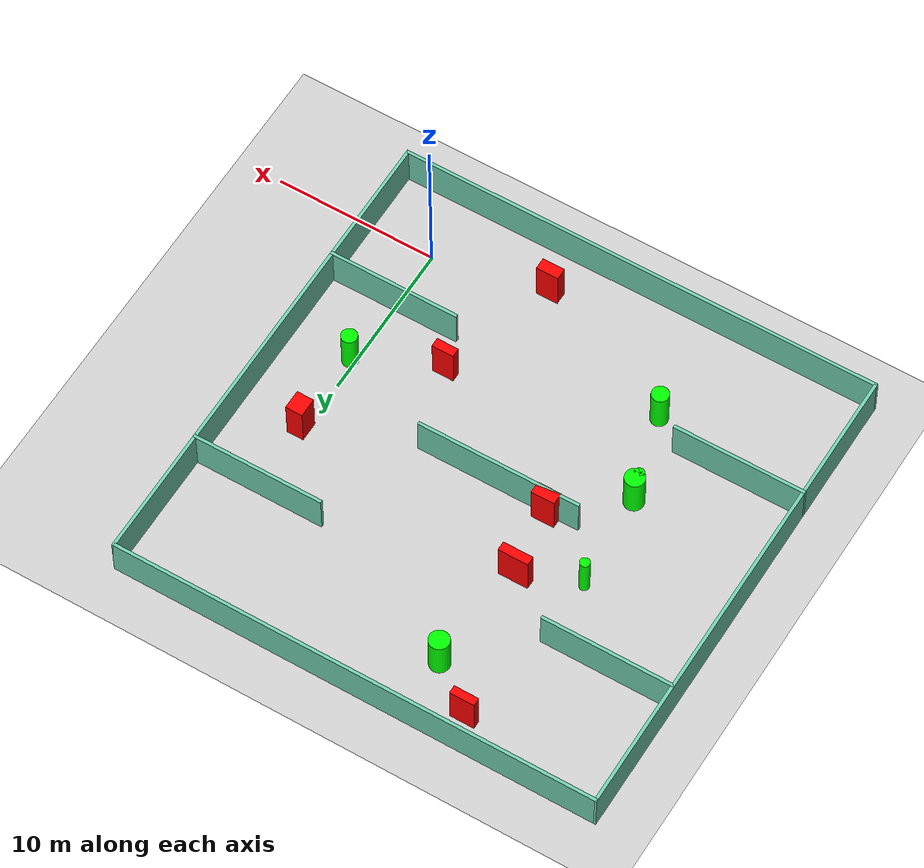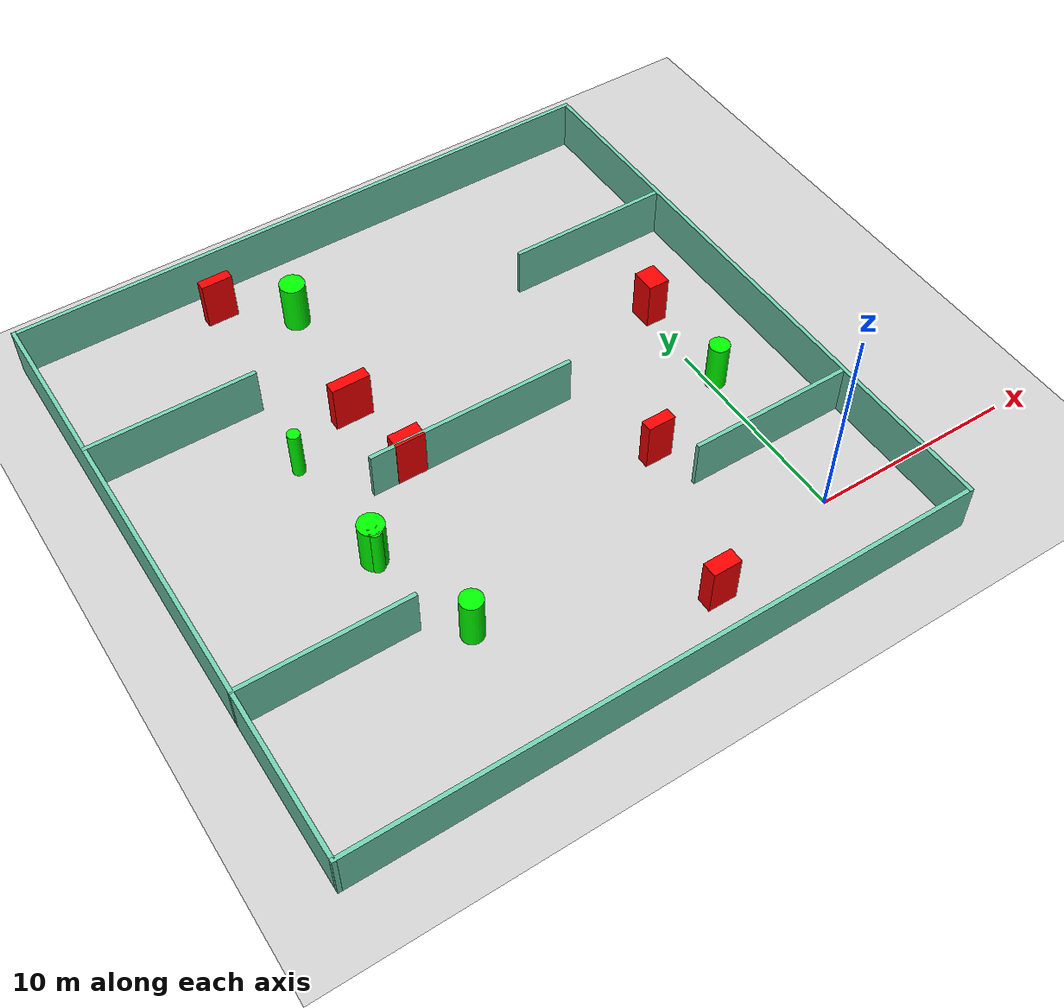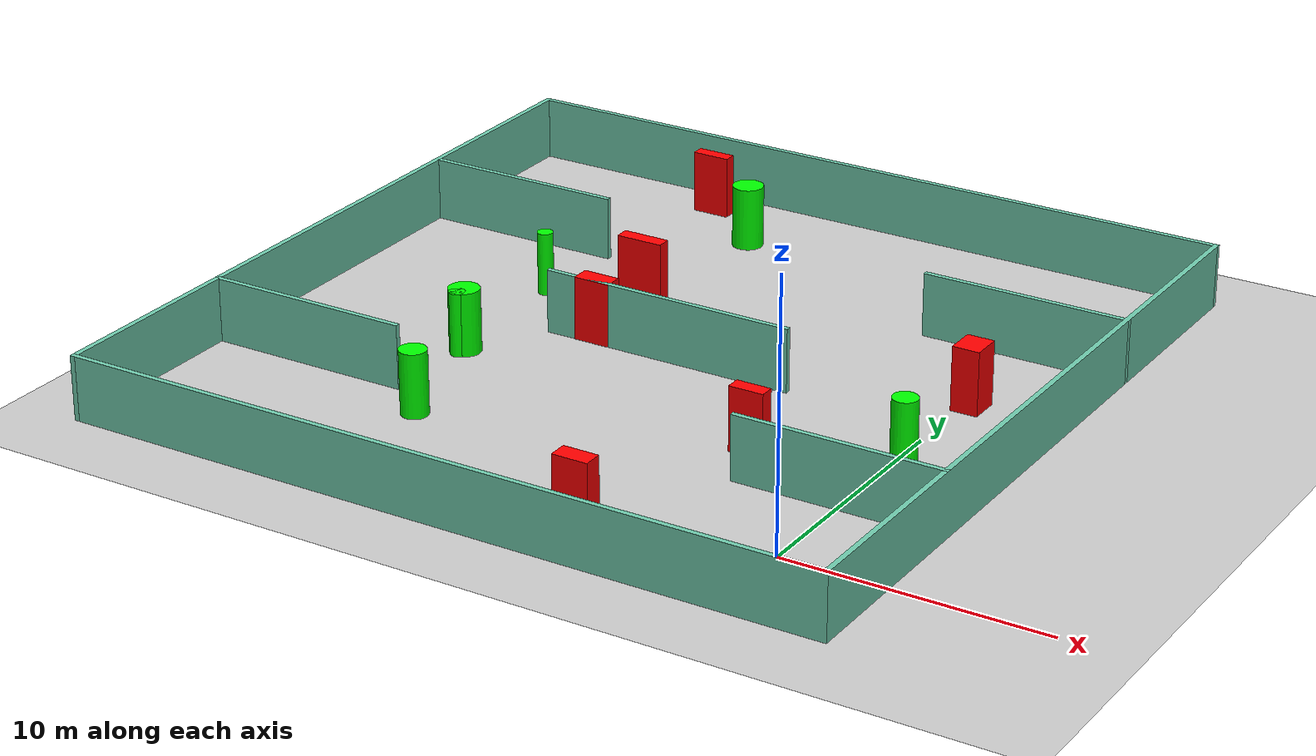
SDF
<sdf version="1.7">
 <world name="default">
  <light name="sun" type="directional">
   <pose>0 0 10 0 -0 0</pose>
   <diffuse>0.8 0.8 0.8 1</diffuse>
   <specular>0.2 0.2 0.2 1</specular>
   <attenuation>
    <range>1000</range>
    <constant>0.9</constant>
    <linear>0.01</linear>
    <quadratic>0.001</quadratic>
   </attenuation>
   <direction>-0.5 0.1 -0.9</direction>
   <spot><inner_angle>0</inner_angle><outer_angle>0</outer_angle><falloff>0</falloff></spot>
  </light>
  <model name="ground_plane">
   <static>1</static>
   <link name="link">
    <collision name="collision">
     <geometry><plane><normal>0 0 1</normal><size>100 100</size></plane></geometry>
     <surface>
      <contact><collide_bitmask>65535</collide_bitmask></contact>
      <friction><ode><mu>100</mu><mu2>50</mu2></ode></friction>
     </surface>
    </collision>
    <visual name="visual">
     <cast_shadows>0</cast_shadows>
     <geometry><plane><normal>0 0 1</normal><size>100 100</size></plane></geometry>
     <material>
      <script><uri>file://media/materials/scripts/gazebo.material</uri><name>Gazebo/Grey</name></script>
     </material>
    </visual>
   </link>
  </model>
  <gravity>0 0 -9.8</gravity>
  <magnetic_field>6e-06 2.3e-05 -4.2e-05</magnetic_field>
  <atmosphere type="adiabatic"/>
  <physics type="ode">
   <max_step_size>0.001</max_step_size>
   <real_time_factor>1</real_time_factor>
   <real_time_update_rate>1000</real_time_update_rate>
  </physics>
  <scene><ambient>0.4 0.4 0.4 1</ambient><background>0.7 0.7 0.7 1</background><shadows>1</shadows></scene>
  <spherical_coordinates>
   <surface_model>EARTH_WGS84</surface_model>
   <latitude_deg>0</latitude_deg>
   <longitude_deg>0</longitude_deg>
   <elevation>0</elevation>
   <heading_deg>0</heading_deg>
  </spherical_coordinates>
  <model name="my_base_walls">
   <link name="Wall_10">
    <collision name="Wall_10_Collision">
     <geometry><box><size>8.2 0.2 2.5</size></box></geometry>
     <pose>0 0 1.25 0 -0 0</pose>
    </collision>
    <visual name="Wall_10_Visual">
     <pose>0 0 1.25 0 -0 0</pose>
     <geometry><box><size>8.2 0.2 2.5</size></box></geometry>
     <material>
      <script><uri>file://media/materials/scripts/gazebo.material</uri><name>Gazebo/Grey</name></script>
      <ambient>0.435294 0.796078 0.67451 1</ambient>
     </material>
     <meta><layer>0</layer></meta>
    </visual>
    <pose>-11 -7 0 0 -0 0</pose>
   </link>
   <link name="Wall_12">
    <collision name="Wall_12_Collision">
     <geometry><box><size>8.2 0.2 2.5</size></box></geometry>
     <pose>0 0 1.25 0 -0 0</pose>
    </collision>
    <visual name="Wall_12_Visual">
     <pose>0 0 1.25 0 -0 0</pose>
     <geometry><box><size>8.2 0.2 2.5</size></box></geometry>
     <material>
      <script><uri>file://media/materials/scripts/gazebo.material</uri><name>Gazebo/Grey</name></script>
      <ambient>0.435294 0.796078 0.67451 1</ambient>
     </material>
     <meta><layer>0</layer></meta>
    </visual>
    <pose>-11 7 0 0 -0 0</pose>
   </link>
   <link name="Wall_14">
    <collision name="Wall_14_Collision">
     <geometry><box><size>8.2 0.2 2.5</size></box></geometry>
     <pose>0 0 1.25 0 -0 0</pose>
    </collision>
    <visual name="Wall_14_Visual">
     <pose>0 0 1.25 0 -0 0</pose>
     <geometry><box><size>8.2 0.2 2.5</size></box></geometry>
     <material>
      <script><uri>file://media/materials/scripts/gazebo.material</uri><name>Gazebo/Grey</name></script>
      <ambient>0.435294 0.796078 0.67451 1</ambient>
     </material>
     <meta><layer>0</layer></meta>
    </visual>
    <pose>11 7 0 0 -0 3.14159</pose>
   </link>
   <link name="Wall_16">
    <collision name="Wall_16_Collision">
     <geometry><box><size>10.2 0.2 2.5</size></box></geometry>
     <pose>0 0 1.25 0 -0 0</pose>
    </collision>
    <visual name="Wall_16_Visual">
     <pose>0 0 1.25 0 -0 0</pose>
     <geometry><box><size>10.2 0.2 2.5</size></box></geometry>
     <material>
      <script><uri>file://media/materials/scripts/gazebo.material</uri><name>Gazebo/Grey</name></script>
      <ambient>0.435294 0.796078 0.67451 1</ambient>
     </material>
     <meta><layer>0</layer></meta>
    </visual>
    <pose>0 0 0 0 -0 3.14159</pose>
   </link>
   <link name="Wall_2">
    <collision name="Wall_2_Collision">
     <geometry><box><size>30.2 0.2 2.5</size></box></geometry>
     <pose>0 0 1.25 0 -0 0</pose>
    </collision>
    <visual name="Wall_2_Visual">
     <pose>0 0 1.25 0 -0 0</pose>
     <geometry><box><size>30.2 0.2 2.5</size></box></geometry>
     <material>
      <script><uri>file://media/materials/scripts/gazebo.material</uri><name>Gazebo/Grey</name></script>
      <ambient>0.435294 0.796078 0.67451 1</ambient>
     </material>
     <meta><layer>0</layer></meta>
    </visual>
    <pose>0 -15 0 0 -0 3.14159</pose>
   </link>
   <link name="Wall_3">
    <collision name="Wall_3_Collision">
     <geometry><box><size>30.2 0.2 2.5</size></box></geometry>
     <pose>0 0 1.25 0 -0 0</pose>
    </collision>
    <visual name="Wall_3_Visual">
     <pose>0 0 1.25 0 -0 0</pose>
     <geometry><box><size>30.2 0.2 2.5</size></box></geometry>
     <material>
      <script><uri>file://media/materials/scripts/gazebo.material</uri><name>Gazebo/Grey</name></script>
      <ambient>0.435294 0.796078 0.67451 1</ambient>
     </material>
     <meta><layer>0</layer></meta>
    </visual>
    <pose>-15 0 0 0 -0 1.5708</pose>
   </link>
   <link name="Wall_4">
    <collision name="Wall_4_Collision">
     <geometry><box><size>30.2 0.2 2.5</size></box></geometry>
     <pose>0 0 1.25 0 -0 0</pose>
    </collision>
    <visual name="Wall_4_Visual">
     <pose>0 0 1.25 0 -0 0</pose>
     <geometry><box><size>30.2 0.2 2.5</size></box></geometry>
     <material>
      <script><uri>file://media/materials/scripts/gazebo.material</uri><name>Gazebo/Grey</name></script>
      <ambient>0.435294 0.796078 0.67451 1</ambient>
     </material>
     <meta><layer>0</layer></meta>
    </visual>
    <pose>0 15 0 0 -0 0</pose>
   </link>
   <link name="Wall_6">
    <collision name="Wall_6_Collision">
     <geometry><box><size>30.2 0.2 2.5</size></box></geometry>
     <pose>0 0 1.25 0 -0 0</pose>
    </collision>
    <visual name="Wall_6_Visual">
     <pose>0 0 1.25 0 -0 0</pose>
     <geometry><box><size>30.2 0.2 2.5</size></box></geometry>
     <material>
      <script><uri>file://media/materials/scripts/gazebo.material</uri><name>Gazebo/Grey</name></script>
      <ambient>0.435294 0.796078 0.67451 1</ambient>
     </material>
     <meta><layer>0</layer></meta>
    </visual>
    <pose>15 0 0 0 -0 1.5708</pose>
   </link>
   <link name="Wall_8">
    <collision name="Wall_8_Collision">
     <geometry><box><size>8.2 0.2 2.5</size></box></geometry>
     <pose>0 0 1.25 0 -0 0</pose>
    </collision>
    <visual name="Wall_8_Visual">
     <pose>0 0 1.25 0 -0 0</pose>
     <geometry><box><size>8.2 0.2 2.5</size></box></geometry>
     <material>
      <script><uri>file://media/materials/scripts/gazebo.material</uri><name>Gazebo/Grey</name></script>
      <ambient>0.435294 0.796078 0.67451 1</ambient>
     </material>
     <meta><layer>0</layer></meta>
    </visual>
    <pose>11 -7 0 0 -0 3.14159</pose>
   </link>
   <static>1</static>
   <pose>-11 11 0 0 -0 0</pose>
  </model>
  <model name="cylinder1">
   <static>1</static>
   <link name="link">
    <inertial>
     <mass>1</mass>
     <inertia><ixx>0.5</ixx><ixy>0</ixy><ixz>0</ixz><iyy>0.5</iyy><iyz>0</iyz><izz>1</izz></inertia>
    </inertial>
    <collision name="collision">
     <geometry><cylinder><radius>0.30498854221425903</radius><length>2.5</length></cylinder></geometry>
    </collision>
    <visual name="visual">
     <geometry><cylinder><radius>0.30498854221425903</radius><length>2.5</length></cylinder></geometry>
     <material>
      <ambient>0 1 0 1</ambient>
      <diffuse>0 1 0 1</diffuse>
      <specular>0.1 0.1 0.1 1</specular>
      <emissive>0 0 0 0</emissive>
     </material>
    </visual>
   </link>
   <pose>-18.17165094140998 13.915496187956947 1.25 0 0 0</pose>
  </model>
  <model name="cylinder2">
   <static>1</static>
   <link name="link">
    <inertial>
     <mass>1</mass>
     <inertia><ixx>0.5</ixx><ixy>0</ixy><ixz>0</ixz><iyy>0.5</iyy><iyz>0</iyz><izz>1</izz></inertia>
    </inertial>
    <collision name="collision">
     <geometry><cylinder><radius>0.3137645891580485</radius><length>2.5</length></cylinder></geometry>
    </collision>
    <visual name="visual">
     <geometry><cylinder><radius>0.3137645891580485</radius><length>2.5</length></cylinder></geometry>
     <material>
      <ambient>0 1 0 1</ambient>
      <diffuse>0 1 0 1</diffuse>
      <specular>0.1 0.1 0.1 1</specular>
      <emissive>0 0 0 0</emissive>
     </material>
    </visual>
   </link>
   <pose>-17.801508465468707 7.545957827158357 1.25 0 0 0</pose>
  </model>
  <model name="cylinder3">
   <static>1</static>
   <link name="link">
    <inertial>
     <mass>1</mass>
     <inertia><ixx>0.5</ixx><ixy>0</ixy><ixz>0</ixz><iyy>0.5</iyy><iyz>0</iyz><izz>1</izz></inertia>
    </inertial>
    <collision name="collision">
     <geometry><cylinder><radius>0.4872868951972238</radius><length>2.5</length></cylinder></geometry>
    </collision>
    <visual name="visual">
     <geometry><cylinder><radius>0.4872868951972238</radius><length>2.5</length></cylinder></geometry>
     <material>
      <ambient>0 1 0 1</ambient>
      <diffuse>0 1 0 1</diffuse>
      <specular>0.1 0.1 0.1 1</specular>
      <emissive>0 0 0 0</emissive>
     </material>
    </visual>
   </link>
   <pose>0.28248960255996636 8.163047668589138 1.25 0 0 0</pose>
  </model>
  <model name="cylinder4">
   <static>1</static>
   <link name="link">
    <inertial>
     <mass>1</mass>
     <inertia><ixx>0.5</ixx><ixy>0</ixy><ixz>0</ixz><iyy>0.5</iyy><iyz>0</iyz><izz>1</izz></inertia>
    </inertial>
    <collision name="collision">
     <geometry><cylinder><radius>0.6087278537706133</radius><length>2.5</length></cylinder></geometry>
    </collision>
    <visual name="visual">
     <geometry><cylinder><radius>0.6087278537706133</radius><length>2.5</length></cylinder></geometry>
     <material>
      <ambient>0 1 0 1</ambient>
      <diffuse>0 1 0 1</diffuse>
      <specular>0.1 0.1 0.1 1</specular>
      <emissive>0 0 0 0</emissive>
     </material>
    </visual>
   </link>
   <pose>-17.763380019401108 7.940170621601606 1.25 0 0 0</pose>
  </model>
  <model name="cylinder5">
   <static>1</static>
   <link name="link">
    <inertial>
     <mass>1</mass>
     <inertia><ixx>0.5</ixx><ixy>0</ixy><ixz>0</ixz><iyy>0.5</iyy><iyz>0</iyz><izz>1</izz></inertia>
    </inertial>
    <collision name="collision">
     <geometry><cylinder><radius>0.6140922882628213</radius><length>2.5</length></cylinder></geometry>
    </collision>
    <visual name="visual">
     <geometry><cylinder><radius>0.6140922882628213</radius><length>2.5</length></cylinder></geometry>
     <material>
      <ambient>0 1 0 1</ambient>
      <diffuse>0 1 0 1</diffuse>
      <specular>0.1 0.1 0.1 1</specular>
      <emissive>0 0 0 0</emissive>
     </material>
    </visual>
   </link>
   <pose>-14.001106751845697 22.02832122562682 1.25 0 0 0</pose>
  </model>
  <model name="cylinder6">
   <static>1</static>
   <link name="link">
    <inertial>
     <mass>1</mass>
     <inertia><ixx>0.5</ixx><ixy>0</ixy><ixz>0</ixz><iyy>0.5</iyy><iyz>0</iyz><izz>1</izz></inertia>
    </inertial>
    <collision name="collision">
     <geometry><cylinder><radius>0.526257602861671</radius><length>2.5</length></cylinder></geometry>
    </collision>
    <visual name="visual">
     <geometry><cylinder><radius>0.526257602861671</radius><length>2.5</length></cylinder></geometry>
     <material>
      <ambient>0 1 0 1</ambient>
      <diffuse>0 1 0 1</diffuse>
      <specular>0.1 0.1 0.1 1</specular>
      <emissive>0 0 0 0</emissive>
     </material>
    </visual>
   </link>
   <pose>-16.24275192833914 2.607521816336731 1.25 0 0 0</pose>
  </model>
  <model name="box1">
   <static>1</static>
   <link name="link">
    <inertial>
     <mass>1</mass>
     <inertia><ixx>0.083</ixx><ixy>0</ixy><ixz>0</ixz><iyy>0.083</iyy><iyz>0</iyz><izz>0.083</izz></inertia>
    </inertial>
    <collision name="collision">
     <geometry><box><size>1.059230571484279 1.1940548437686667 2.5</size></box></geometry>
    </collision>
    <visual name="visual">
     <geometry><box><size>1.059230571484279 1.1940548437686667 2.5</size></box></geometry>
     <material>
      <ambient>1 0 0 1</ambient>
      <diffuse>1 0 0 1</diffuse>
      <specular>0.1 0.1 0.1 1</specular>
      <emissive>0 0 0 0</emissive>
     </material>
    </visual>
    <sensor name="my_contact" type="contact">
     <contact><collision>box_collision</collision><topic>__default_topic__</topic></contact>
    </sensor>
   </link>
   <pose>0.2618826883476615 13.304770485572071 1.25 0 0 0</pose>
  </model>
  <model name="box2">
   <static>1</static>
   <link name="link">
    <inertial>
     <mass>1</mass>
     <inertia><ixx>0.083</ixx><ixy>0</ixy><ixz>0</ixz><iyy>0.083</iyy><iyz>0</iyz><izz>0.083</izz></inertia>
    </inertial>
    <collision name="collision">
     <geometry><box><size>1.3882524268613223 0.7342550608333442 2.5</size></box></geometry>
    </collision>
    <visual name="visual">
     <geometry><box><size>1.3882524268613223 0.7342550608333442 2.5</size></box></geometry>
     <material>
      <ambient>1 0 0 1</ambient>
      <diffuse>1 0 0 1</diffuse>
      <specular>0.1 0.1 0.1 1</specular>
      <emissive>0 0 0 0</emissive>
     </material>
    </visual>
    <sensor name="my_contact" type="contact">
     <contact><collision>box_collision</collision><topic>__default_topic__</topic></contact>
    </sensor>
   </link>
   <pose>-6.892177878153587 -1.3609768883861526 1.25 0 0 0</pose>
  </model>
  <model name="box3">
   <static>1</static>
   <link name="link">
    <inertial>
     <mass>1</mass>
     <inertia><ixx>0.083</ixx><ixy>0</ixy><ixz>0</ixz><iyy>0.083</iyy><iyz>0</iyz><izz>0.083</izz></inertia>
    </inertial>
    <collision name="collision">
     <geometry><box><size>1.5192716572517735 0.5001366145652941 2.5</size></box></geometry>
    </collision>
    <visual name="visual">
     <geometry><box><size>1.5192716572517735 0.5001366145652941 2.5</size></box></geometry>
     <material>
      <ambient>1 0 0 1</ambient>
      <diffuse>1 0 0 1</diffuse>
      <specular>0.1 0.1 0.1 1</specular>
      <emissive>0 0 0 0</emissive>
     </material>
    </visual>
    <sensor name="my_contact" type="contact">
     <contact><collision>box_collision</collision><topic>__default_topic__</topic></contact>
    </sensor>
   </link>
   <pose>-16.89091987243307 24.234388392213333 1.25 0 0 0</pose>
  </model>
  <model name="box4">
   <static>1</static>
   <link name="link">
    <inertial>
     <mass>1</mass>
     <inertia><ixx>0.083</ixx><ixy>0</ixy><ixz>0</ixz><iyy>0.083</iyy><iyz>0</iyz><izz>0.083</izz></inertia>
    </inertial>
    <collision name="collision">
     <geometry><box><size>1.3598850426458622 0.5676068658663584 2.5</size></box></geometry>
    </collision>
    <visual name="visual">
     <geometry><box><size>1.3598850426458622 0.5676068658663584 2.5</size></box></geometry>
     <material>
      <ambient>1 0 0 1</ambient>
      <diffuse>1 0 0 1</diffuse>
      <specular>0.1 0.1 0.1 1</specular>
      <emissive>0 0 0 0</emissive>
     </material>
    </visual>
    <sensor name="my_contact" type="contact">
     <contact><collision>box_collision</collision><topic>__default_topic__</topic></contact>
    </sensor>
   </link>
   <pose>-4.61747744215673 6.090888077810865 1.25 0 0 0</pose>
  </model>
  <model name="box5">
   <static>1</static>
   <link name="link">
    <inertial>
     <mass>1</mass>
     <inertia><ixx>0.083</ixx><ixy>0</ixy><ixz>0</ixz><iyy>0.083</iyy><iyz>0</iyz><izz>0.083</izz></inertia>
    </inertial>
    <collision name="collision">
     <geometry><box><size>1.4471335558645433 0.7466632126923609 2.5</size></box></geometry>
    </collision>
    <visual name="visual">
     <geometry><box><size>1.4471335558645433 0.7466632126923609 2.5</size></box></geometry>
     <material>
      <ambient>1 0 0 1</ambient>
      <diffuse>1 0 0 1</diffuse>
      <specular>0.1 0.1 0.1 1</specular>
      <emissive>0 0 0 0</emissive>
     </material>
    </visual>
    <sensor name="my_contact" type="contact">
     <contact><collision>box_collision</collision><topic>__default_topic__</topic></contact>
    </sensor>
   </link>
   <pose>-14.156280754910588 11.253822537685474 1.25 0 0 0</pose>
  </model>
  <model name="box6">
   <static>1</static>
   <link name="link">
    <inertial>
     <mass>1</mass>
     <inertia><ixx>0.083</ixx><ixy>0</ixy><ixz>0</ixz><iyy>0.083</iyy><iyz>0</iyz><izz>0.083</izz></inertia>
    </inertial>
    <collision name="collision">
     <geometry><box><size>1.8732100718058504 0.5655164440457722 2.5</size></box></geometry>
    </collision>
    <visual name="visual">
     <geometry><box><size>1.8732100718058504 0.5655164440457722 2.5</size></box></geometry>
     <material>
      <ambient>1 0 0 1</ambient>
      <diffuse>1 0 0 1</diffuse>
      <specular>0.1 0.1 0.1 1</specular>
      <emissive>0 0 0 0</emissive>
     </material>
    </visual>
    <sensor name="my_contact" type="contact">
     <contact><collision>box_collision</collision><topic>__default_topic__</topic></contact>
    </sensor>
   </link>
   <pose>-14.71030725776352 15.358206074590576 1.25 0 0 0</pose>
  </model>
 </world>
</sdf>
